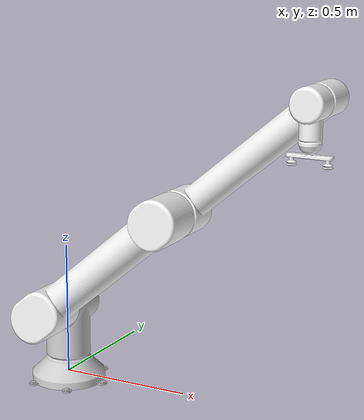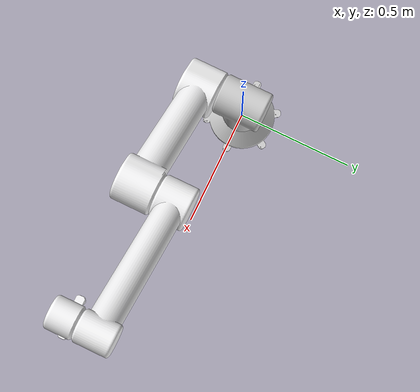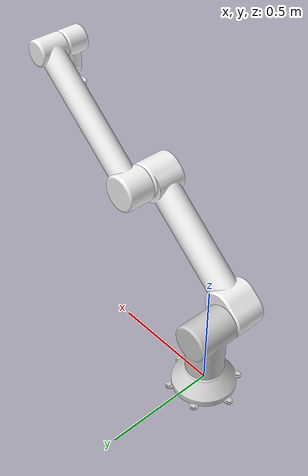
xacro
<?xml version="1.0"?>
<robot xmlns:xacro="http://www.ros.org/wiki/xacro" name="chocolate_robot">

  <!-- Materials (shared across all assemblies) -->
  <material name="Aluminum">
    <color rgba="0.961 0.961 0.965 1.0"/>
  </material>
  <material name="Stainless_Steel_Brushed">
    <color rgba="0.796 0.796 0.796 1.0"/>
  </material>

  <!-- Assembly includes -->
  <xacro:include filename="$(find chocolate_robot_description)/urdf/assemblies/chocolate_robot.urdf.xacro"/>

  <!-- Instantiate assemblies -->
  <xacro:chocolate_robot prefix=""/>

</robot>

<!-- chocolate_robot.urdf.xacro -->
<robot xmlns:xacro="http://www.ros.org/wiki/xacro" name="chocolate_robot_macro">

  <xacro:macro name="chocolate_robot" params="prefix">

    <!-- Links -->
    <link name="${prefix}base_link">
      <inertial>
        <origin xyz="-0.000000 -0.000000 0.009875" rpy="0 0 0"/>
        <mass value="34.087736"/>
        <inertia ixx="1.593195e-01" ixy="0.000000e+00" ixz="6.908194e-10"
                 iyy="1.593195e-01" iyz="6.921627e-10" izz="2.748536e-01"/>
      </inertial>
      <visual>
        <origin xyz="0.000000 0.000000 0.000000" rpy="0.000000 0.000000 0.000000"/>
        <geometry>
          <mesh filename="package://chocolate_robot_description/meshes/chocolate_robot/base_link.dae" scale="1 1 1"/>
        </geometry>
        <material name="Stainless_Steel_Brushed"/>
      </visual>
      <collision>
        <origin xyz="0.000000 0.000000 0.000000" rpy="0.000000 0.000000 0.000000"/>
        <geometry>
          <mesh filename="package://chocolate_robot_description/meshes/chocolate_robot/base_link_collision.stl" scale="0.01 0.01 0.01"/>
        </geometry>
      </collision>
    </link>

    <link name="${prefix}link_1">
      <inertial>
        <origin xyz="-0.000000 0.000000 -0.150226" rpy="0 0 0"/>
        <mass value="59.188391"/>
        <inertia ixx="5.250995e-01" ixy="1.155047e-06" ixz="3.558606e-07"
                 iyy="4.741612e-01" iyz="2.355918e-07" izz="2.679484e-01"/>
      </inertial>
      <visual>
        <origin xyz="0.000000 -0.000000 0.067260" rpy="3.141593 0.000000 0.000000"/>
        <geometry>
          <mesh filename="package://chocolate_robot_description/meshes/chocolate_robot/link_1.dae" scale="1 1 1"/>
        </geometry>
        <material name="Stainless_Steel_Brushed"/>
      </visual>
      <collision>
        <origin xyz="0.000000 -0.000000 0.067260" rpy="3.141593 0.000000 0.000000"/>
        <geometry>
          <mesh filename="package://chocolate_robot_description/meshes/chocolate_robot/link_1_collision.stl" scale="0.01 0.01 0.01"/>
        </geometry>
      </collision>
    </link>

    <link name="${prefix}link_2">
      <inertial>
        <origin xyz="0.252212 -0.211631 -0.079085" rpy="0 0 0"/>
        <mass value="40.893734"/>
        <inertia ixx="1.241178e+00" ixy="1.322121e+00" ixz="1.280860e-03"
                 iyy="1.707430e+00" iyz="-1.075787e-03" izz="2.814841e+00"/>
      </inertial>
      <visual>
        <origin xyz="0.000000 0.184215 0.153998" rpy="0.698132 0.000000 0.000000"/>
        <geometry>
          <mesh filename="package://chocolate_robot_description/meshes/chocolate_robot/link_2.dae" scale="1 1 1"/>
        </geometry>
        <material name="Aluminum"/>
      </visual>
      <collision>
        <origin xyz="0.000000 0.184215 0.153998" rpy="0.698132 0.000000 0.000000"/>
        <geometry>
          <mesh filename="package://chocolate_robot_description/meshes/chocolate_robot/link_2_collision.stl" scale="0.01 0.01 0.01"/>
        </geometry>
      </collision>
    </link>

    <link name="${prefix}link_3">
      <inertial>
        <origin xyz="0.223812 0.187791 -0.066436" rpy="0 0 0"/>
        <mass value="26.233674"/>
        <inertia ixx="7.295019e-01" ixy="-8.012426e-01" ixz="-4.841859e-04"
                 iyy="1.012100e+00" iyz="-3.821474e-04" izz="1.684865e+00"/>
      </inertial>
      <visual>
        <origin xyz="-0.515241 -1.835000 -0.035287" rpy="-0.872665 0.000000 0.000000"/>
        <geometry>
          <mesh filename="package://chocolate_robot_description/meshes/chocolate_robot/link_3.dae" scale="1 1 1"/>
        </geometry>
        <material name="Aluminum"/>
      </visual>
      <collision>
        <origin xyz="-0.515241 -1.835000 -0.035287" rpy="-0.872665 0.000000 0.000000"/>
        <geometry>
          <mesh filename="package://chocolate_robot_description/meshes/chocolate_robot/link_3_collision.stl" scale="0.01 0.01 0.01"/>
        </geometry>
      </collision>
    </link>

    <link name="${prefix}link_4">
      <inertial>
        <origin xyz="0.000000 0.016912 -0.050573" rpy="0 0 0"/>
        <mass value="3.627452"/>
        <inertia ixx="9.554885e-03" ixy="-1.065091e-08" ixz="2.633090e-09"
                 iyy="5.383305e-03" iyz="-9.844411e-07" izz="9.659763e-03"/>
      </inertial>
      <visual>
        <origin xyz="-1.030483 1.292661 0.608001" rpy="1.570796 0.000000 0.000000"/>
        <geometry>
          <mesh filename="package://chocolate_robot_description/meshes/chocolate_robot/link_4.dae" scale="1 1 1"/>
        </geometry>
        <material name="Aluminum"/>
      </visual>
      <collision>
        <origin xyz="-1.030483 1.292661 0.608001" rpy="1.570796 0.000000 0.000000"/>
        <geometry>
          <mesh filename="package://chocolate_robot_description/meshes/chocolate_robot/link_4_collision.stl" scale="0.01 0.01 0.01"/>
        </geometry>
      </collision>
    </link>

    <link name="${prefix}link_5_suctioncup">
      <inertial>
        <origin xyz="-0.000082 0.000211 0.030292" rpy="0 0 0"/>
        <mass value="0.560718"/>
        <inertia ixx="3.656890e-04" ixy="1.813770e-08" ixz="1.433474e-06"
                 iyy="8.149164e-04" iyz="-2.920965e-06" izz="6.908766e-04"/>
      </inertial>
      <visual>
        <origin xyz="-1.030483 -0.658558 1.176504" rpy="3.141593 0.000000 0.000000"/>
        <geometry>
          <mesh filename="package://chocolate_robot_description/meshes/chocolate_robot/link_5_suctioncup.dae" scale="1 1 1"/>
        </geometry>
        <material name="Aluminum"/>
      </visual>
      <collision>
        <origin xyz="-1.030483 -0.658558 1.176504" rpy="3.141593 0.000000 0.000000"/>
        <geometry>
          <mesh filename="package://chocolate_robot_description/meshes/chocolate_robot/link_5_suctioncup_collision.stl" scale="0.01 0.01 0.01"/>
        </geometry>
      </collision>
    </link>

    <!-- Joints (internal to assembly) -->
    <joint name="${prefix}joint_1" type="continuous">
      <parent link="${prefix}base_link"/>
      <child link="${prefix}link_1"/>
      <origin xyz="-0.000000 -0.000000 0.067260" rpy="-3.141593 0.000000 0.000000"/>
      <axis xyz="0.000000 0.000000 1.000000"/>
      <limit effort="100.0" velocity="1.00"/>
    </joint>

    <joint name="${prefix}joint_2" type="continuous">
      <parent link="${prefix}link_1"/>
      <child link="${prefix}link_2"/>
      <origin xyz="0.000000 0.101002 -0.204715" rpy="1.570796 0.000000 0.000000"/>
      <axis xyz="0.000000 0.000000 1.000000"/>
      <limit effort="100.0" velocity="1.00"/>
    </joint>

    <joint name="${prefix}joint_3" type="continuous">
      <parent link="${prefix}link_2"/>
      <child link="${prefix}link_3"/>
      <origin xyz="0.515241 -0.432339 -0.000308" rpy="-3.141593 0.000000 0.000000"/>
      <axis xyz="0.000000 0.000000 1.000000"/>
      <limit effort="100.0" velocity="1.00"/>
    </joint>

    <joint name="${prefix}joint_4" type="continuous">
      <parent link="${prefix}link_3"/>
      <child link="${prefix}link_4"/>
      <origin xyz="0.515241 0.432339 0.000012" rpy="-3.141593 0.000000 0.000000"/>
      <axis xyz="0.000000 0.000000 1.000000"/>
      <limit effort="100.0" velocity="1.00"/>
    </joint>

    <joint name="${prefix}joint_5" type="continuous">
      <parent link="${prefix}link_4"/>
      <child link="${prefix}link_5_suctioncup"/>
      <origin xyz="0.000000 0.116157 -0.050557" rpy="-1.570796 0.000000 0.000000"/>
      <axis xyz="0.000000 0.000000 1.000000"/>
      <limit effort="100.0" velocity="1.00"/>
    </joint>

    <!-- ROS 2 control: generated generic system -->
    <ros2_control name="${prefix}chocolate_robot_system" type="system">
      <hardware>
        <plugin>mock_components/GenericSystem</plugin>
        <param name="cmd_topic">sim/chocolate_robot_system/cmd</param>
        <param name="state_topic">sim/chocolate_robot_system/state</param>
      </hardware>

      <joint name="${prefix}joint_1">
        <command_interface name="position"/>
        <command_interface name="velocity"/>
        <state_interface name="position">
          <param name="initial_value">0.0</param>
        </state_interface>
        <state_interface name="velocity"/>
        <state_interface name="effort"/>
      </joint>
      <joint name="${prefix}joint_2">
        <command_interface name="position"/>
        <command_interface name="velocity"/>
        <state_interface name="position">
          <param name="initial_value">0.0</param>
        </state_interface>
        <state_interface name="velocity"/>
        <state_interface name="effort"/>
      </joint>
      <joint name="${prefix}joint_3">
        <command_interface name="position"/>
        <command_interface name="velocity"/>
        <state_interface name="position">
          <param name="initial_value">0.0</param>
        </state_interface>
        <state_interface name="velocity"/>
        <state_interface name="effort"/>
      </joint>
      <joint name="${prefix}joint_4">
        <command_interface name="position"/>
        <command_interface name="velocity"/>
        <state_interface name="position">
          <param name="initial_value">0.0</param>
        </state_interface>
        <state_interface name="velocity"/>
        <state_interface name="effort"/>
      </joint>
      <joint name="${prefix}joint_5">
        <command_interface name="position"/>
        <command_interface name="velocity"/>
        <state_interface name="position">
          <param name="initial_value">0.0</param>
        </state_interface>
        <state_interface name="velocity"/>
        <state_interface name="effort"/>
      </joint>
    </ros2_control>

  </xacro:macro>

</robot>
